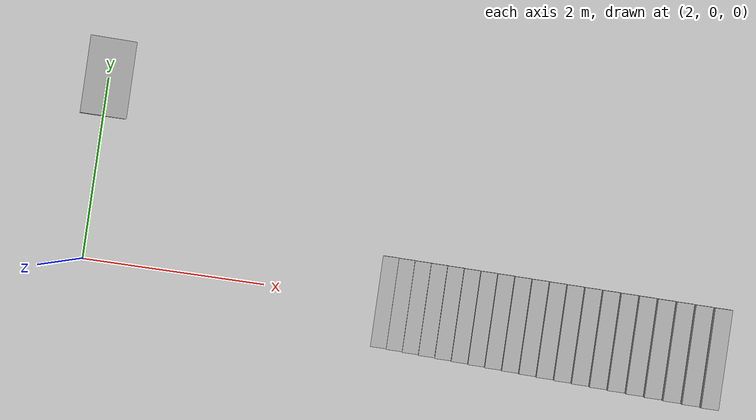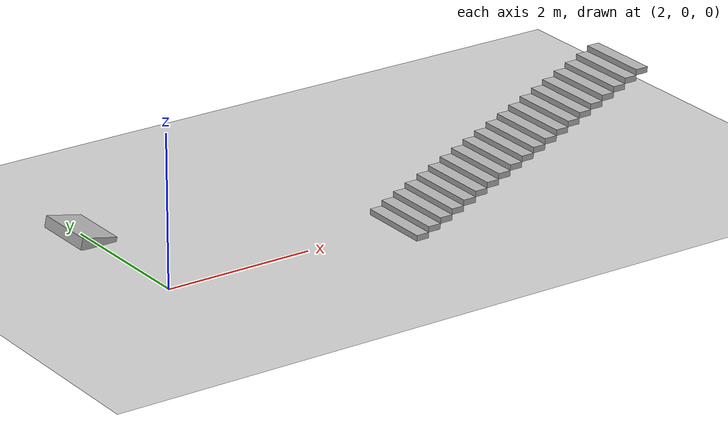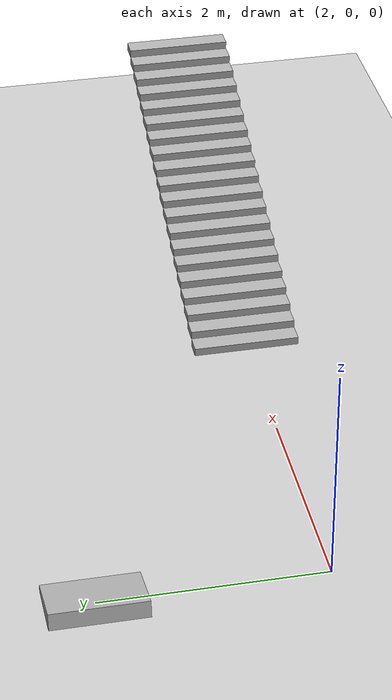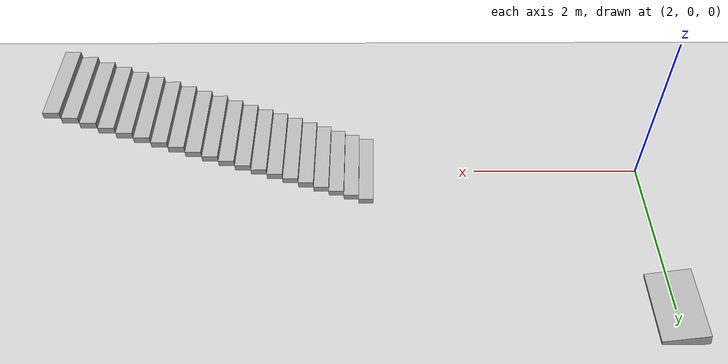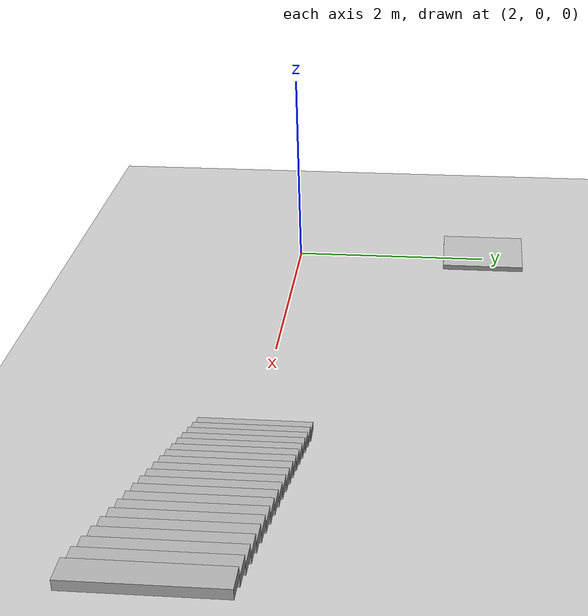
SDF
<sdf version="1.10">
 <world name="default">
  <physics name="4ms" type="ignored">
   <max_step_size>0.0040000000000000001</max_step_size>
   <real_time_factor>1</real_time_factor>
   <real_time_update_rate>1000</real_time_update_rate>
  </physics>
  <plugin name="gz::sim::systems::Physics" filename="gz-sim-physics-system"/>
  <plugin name="gz::sim::systems::UserCommands" filename="gz-sim-user-commands-system"/>
  <plugin name="gz::sim::systems::SceneBroadcaster" filename="gz-sim-scene-broadcaster-system"/>
  <plugin filename="gz-sim-imu-system" name="gz::sim::systems::Imu"/>
  <scene>
   <ambient>1 1 1 1</ambient>
   <background>0.800000012 0.800000012 0.800000012 1</background>
   <shadows>true</shadows>
  </scene>
  <gravity>0 0 -9.8000000000000007</gravity>
  <magnetic_field>6.0000000000000002e-06 2.3e-05 -4.1999999999999998e-05</magnetic_field>
  <atmosphere type="adiabatic"/>
  <model name="ground_plane">
   <static>true</static>
   <link name="link">
    <collision name="collision">
     <geometry><plane><normal>0 0 1</normal><size>100 100</size></plane></geometry>
    </collision>
    <visual name="visual">
     <geometry><plane><normal>0 0 1</normal><size>100 100</size></plane></geometry>
     <material>
      <ambient>0.800000012 0.800000012 0.800000012 1</ambient>
      <diffuse>0.800000012 0.800000012 0.800000012 1</diffuse>
      <specular>0.800000012 0.800000012 0.800000012 1</specular>
     </material>
    </visual>
    <inertial>
     <mass>1</mass>
     <inertia><ixx>1</ixx><ixy>0</ixy><ixz>0</ixz><iyy>1</iyy><iyz>0</iyz><izz>1</izz></inertia>
    </inertial>
   </link>
  </model>
  <model name="stairs_very_simple">
   <pose>7 0 0 0 0 1.5708000000000006</pose>
   <link name="Stairs_3">
    <visual name="Stairs_3_Visual_0">
     <pose>0 1.6625000000000001 0.037499999999999999 0 0 0</pose>
     <geometry><box><size>1 0.17499999999999999 0.074999999999999997</size></box></geometry>
     <material><ambient>.6 .6 .6  1.0</ambient><diffuse>.7 .7 .7  1.0</diffuse></material>
     <meta><layer>0</layer></meta>
    </visual>
    <collision name="Stairs_3_Collision_0">
     <geometry><box><size>1 0.17499999999999999 0.074999999999999997</size></box></geometry>
     <pose>0 1.6625000000000001 0.037499999999999999 0 0 0</pose>
    </collision>
    <visual name="Stairs_3_Visual_1">
     <pose>0 1.4875 0.1125 0 0 0</pose>
     <geometry><box><size>1 0.17499999999999999 0.074999999999999997</size></box></geometry>
     <material><ambient>.6 .6 .6  1.0</ambient><diffuse>.7 .7 .7  1.0</diffuse></material>
     <meta><layer>0</layer></meta>
    </visual>
    <collision name="Stairs_3_Collision_1">
     <geometry><box><size>1 0.17499999999999999 0.074999999999999997</size></box></geometry>
     <pose>0 1.4875 0.1125 0 0 0</pose>
    </collision>
    <visual name="Stairs_3_Visual_2">
     <pose>0 1.3125 0.1875 0 0 0</pose>
     <geometry><box><size>1 0.17499999999999999 0.074999999999999997</size></box></geometry>
     <material><ambient>.6 .6 .6  1.0</ambient><diffuse>.7 .7 .7  1.0</diffuse></material>
     <meta><layer>0</layer></meta>
    </visual>
    <collision name="Stairs_3_Collision_2">
     <geometry><box><size>1 0.17499999999999999 0.074999999999999997</size></box></geometry>
     <pose>0 1.3125 0.1875 0 0 0</pose>
    </collision>
    <visual name="Stairs_3_Visual_3">
     <pose>0 1.1375 0.26250000000000001 0 0 0</pose>
     <geometry><box><size>1 0.17499999999999999 0.074999999999999997</size></box></geometry>
     <material><ambient>.6 .6 .6  1.0</ambient><diffuse>.7 .7 .7  1.0</diffuse></material>
     <meta><layer>0</layer></meta>
    </visual>
    <collision name="Stairs_3_Collision_3">
     <geometry><box><size>1 0.17499999999999999 0.074999999999999997</size></box></geometry>
     <pose>0 1.1375 0.26250000000000001 0 0 0</pose>
    </collision>
    <visual name="Stairs_3_Visual_4">
     <pose>0 0.96250000000000002 0.33750000000000002 0 0 0</pose>
     <geometry><box><size>1 0.17499999999999999 0.074999999999999997</size></box></geometry>
     <material><ambient>.6 .6 .6  1.0</ambient><diffuse>.7 .7 .7  1.0</diffuse></material>
     <meta><layer>0</layer></meta>
    </visual>
    <collision name="Stairs_3_Collision_4">
     <geometry><box><size>1 0.17499999999999999 0.074999999999999997</size></box></geometry>
     <pose>0 0.96250000000000002 0.33750000000000002 0 0 0</pose>
    </collision>
    <visual name="Stairs_3_Visual_5">
     <pose>0 0.78749999999999998 0.41249999999999998 0 0 0</pose>
     <geometry><box><size>1 0.17499999999999999 0.074999999999999997</size></box></geometry>
     <material><ambient>.6 .6 .6  1.0</ambient><diffuse>.7 .7 .7  1.0</diffuse></material>
     <meta><layer>0</layer></meta>
    </visual>
    <collision name="Stairs_3_Collision_5">
     <geometry><box><size>1 0.17499999999999999 0.074999999999999997</size></box></geometry>
     <pose>0 0.78749999999999998 0.41249999999999998 0 0 0</pose>
    </collision>
    <visual name="Stairs_3_Visual_6">
     <pose>0 0.61250000000000004 0.48749999999999999 0 0 0</pose>
     <geometry><box><size>1 0.17499999999999999 0.074999999999999997</size></box></geometry>
     <material><ambient>.6 .6 .6  1.0</ambient><diffuse>.7 .7 .7  1.0</diffuse></material>
     <meta><layer>0</layer></meta>
    </visual>
    <collision name="Stairs_3_Collision_6">
     <geometry><box><size>1 0.17499999999999999 0.074999999999999997</size></box></geometry>
     <pose>0 0.61250000000000004 0.48749999999999999 0 0 0</pose>
    </collision>
    <visual name="Stairs_3_Visual_7">
     <pose>0 0.4375 0.5625 0 0 0</pose>
     <geometry><box><size>1 0.17499999999999999 0.074999999999999997</size></box></geometry>
     <material><ambient>.6 .6 .6  1.0</ambient><diffuse>.7 .7 .7  1.0</diffuse></material>
     <meta><layer>0</layer></meta>
    </visual>
    <collision name="Stairs_3_Collision_7">
     <geometry><box><size>1 0.17499999999999999 0.074999999999999997</size></box></geometry>
     <pose>0 0.4375 0.5625 0 0 0</pose>
    </collision>
    <visual name="Stairs_3_Visual_8">
     <pose>0 0.26250000000000001 0.63749999999999996 0 0 0</pose>
     <geometry><box><size>1 0.17499999999999999 0.074999999999999997</size></box></geometry>
     <material><ambient>.6 .6 .6  1.0</ambient><diffuse>.7 .7 .7  1.0</diffuse></material>
     <meta><layer>0</layer></meta>
    </visual>
    <collision name="Stairs_3_Collision_8">
     <geometry><box><size>1 0.17499999999999999 0.074999999999999997</size></box></geometry>
     <pose>0 0.26250000000000001 0.63749999999999996 0 0 0</pose>
    </collision>
    <visual name="Stairs_3_Visual_9">
     <pose>0 0.087499999999999994 0.71250000000000002 0 0 0</pose>
     <geometry><box><size>1 0.17499999999999999 0.074999999999999997</size></box></geometry>
     <material><ambient>.6 .6 .6  1.0</ambient><diffuse>.7 .7 .7  1.0</diffuse></material>
     <meta><layer>0</layer></meta>
    </visual>
    <collision name="Stairs_3_Collision_9">
     <geometry><box><size>1 0.17499999999999999 0.074999999999999997</size></box></geometry>
     <pose>0 0.087499999999999994 0.71250000000000002 0 0 0</pose>
    </collision>
    <visual name="Stairs_3_Visual_10">
     <pose>0 -0.087499999999999994 0.78749999999999998 0 0 0</pose>
     <geometry><box><size>1 0.17499999999999999 0.074999999999999997</size></box></geometry>
     <material><ambient>.6 .6 .6  1.0</ambient><diffuse>.7 .7 .7  1.0</diffuse></material>
     <meta><layer>0</layer></meta>
    </visual>
    <collision name="Stairs_3_Collision_10">
     <geometry><box><size>1 0.17499999999999999 0.074999999999999997</size></box></geometry>
     <pose>0 -0.087499999999999994 0.78749999999999998 0 0 0</pose>
    </collision>
    <visual name="Stairs_3_Visual_11">
     <pose>0 -0.26250000000000001 0.86250000000000004 0 0 0</pose>
     <geometry><box><size>1 0.17499999999999999 0.074999999999999997</size></box></geometry>
     <material><ambient>.6 .6 .6  1.0</ambient><diffuse>.7 .7 .7  1.0</diffuse></material>
     <meta><layer>0</layer></meta>
    </visual>
    <collision name="Stairs_3_Collision_11">
     <geometry><box><size>1 0.17499999999999999 0.074999999999999997</size></box></geometry>
     <pose>0 -0.26250000000000001 0.86250000000000004 0 0 0</pose>
    </collision>
    <visual name="Stairs_3_Visual_12">
     <pose>0 -0.4375 0.9375 0 0 0</pose>
     <geometry><box><size>1 0.17499999999999999 0.074999999999999997</size></box></geometry>
     <material><ambient>.6 .6 .6  1.0</ambient><diffuse>.7 .7 .7  1.0</diffuse></material>
     <meta><layer>0</layer></meta>
    </visual>
    <collision name="Stairs_3_Collision_12">
     <geometry><box><size>1 0.17499999999999999 0.074999999999999997</size></box></geometry>
     <pose>0 -0.4375 0.9375 0 0 0</pose>
    </collision>
    <visual name="Stairs_3_Visual_13">
     <pose>0 -0.61250000000000004 1.0125 0 0 0</pose>
     <geometry><box><size>1 0.17499999999999999 0.074999999999999997</size></box></geometry>
     <material><ambient>.6 .6 .6  1.0</ambient><diffuse>.7 .7 .7  1.0</diffuse></material>
     <meta><layer>0</layer></meta>
    </visual>
    <collision name="Stairs_3_Collision_13">
     <geometry><box><size>1 0.17499999999999999 0.074999999999999997</size></box></geometry>
     <pose>0 -0.61250000000000004 1.0125 0 0 0</pose>
    </collision>
    <visual name="Stairs_3_Visual_14">
     <pose>0 -0.78749999999999998 1.0874999999999999 0 0 0</pose>
     <geometry><box><size>1 0.17499999999999999 0.074999999999999997</size></box></geometry>
     <material><ambient>.6 .6 .6  1.0</ambient><diffuse>.7 .7 .7  1.0</diffuse></material>
     <meta><layer>0</layer></meta>
    </visual>
    <collision name="Stairs_3_Collision_14">
     <geometry><box><size>1 0.17499999999999999 0.074999999999999997</size></box></geometry>
     <pose>0 -0.78749999999999998 1.0874999999999999 0 0 0</pose>
    </collision>
    <visual name="Stairs_3_Visual_15">
     <pose>0 -0.96250000000000002 1.1625000000000001 0 0 0</pose>
     <geometry><box><size>1 0.17499999999999999 0.074999999999999997</size></box></geometry>
     <material><ambient>.6 .6 .6  1.0</ambient><diffuse>.7 .7 .7  1.0</diffuse></material>
     <meta><layer>0</layer></meta>
    </visual>
    <collision name="Stairs_3_Collision_15">
     <geometry><box><size>1 0.17499999999999999 0.074999999999999997</size></box></geometry>
     <pose>0 -0.96250000000000002 1.1625000000000001 0 0 0</pose>
    </collision>
    <visual name="Stairs_3_Visual_16">
     <pose>0 -1.1375 1.2375 0 0 0</pose>
     <geometry><box><size>1 0.17499999999999999 0.074999999999999997</size></box></geometry>
     <material><ambient>.6 .6 .6  1.0</ambient><diffuse>.7 .7 .7  1.0</diffuse></material>
     <meta><layer>0</layer></meta>
    </visual>
    <collision name="Stairs_3_Collision_16">
     <geometry><box><size>1 0.17499999999999999 0.074999999999999997</size></box></geometry>
     <pose>0 -1.1375 1.2375 0 0 0</pose>
    </collision>
    <visual name="Stairs_3_Visual_17">
     <pose>0 -1.3125 1.3125 0 0 0</pose>
     <geometry><box><size>1 0.17499999999999999 0.074999999999999997</size></box></geometry>
     <material><ambient>.6 .6 .6  1.0</ambient><diffuse>.7 .7 .7  1.0</diffuse></material>
     <meta><layer>0</layer></meta>
    </visual>
    <collision name="Stairs_3_Collision_17">
     <geometry><box><size>1 0.17499999999999999 0.074999999999999997</size></box></geometry>
     <pose>0 -1.3125 1.3125 0 0 0</pose>
    </collision>
    <visual name="Stairs_3_Visual_18">
     <pose>0 -1.4875 1.3875 0 0 0</pose>
     <geometry><box><size>1 0.17499999999999999 0.074999999999999997</size></box></geometry>
     <material><ambient>.6 .6 .6  1.0</ambient><diffuse>.7 .7 .7  1.0</diffuse></material>
     <meta><layer>0</layer></meta>
    </visual>
    <collision name="Stairs_3_Collision_18">
     <geometry><box><size>1 0.17499999999999999 0.074999999999999997</size></box></geometry>
     <pose>0 -1.4875 1.3875 0 0 0</pose>
    </collision>
    <visual name="Stairs_3_Visual_19">
     <pose>0 -1.6625000000000001 1.4624999999999999 0 0 0</pose>
     <geometry><box><size>1 0.17499999999999999 0.074999999999999997</size></box></geometry>
     <material><ambient>.6 .6 .6  1.0</ambient><diffuse>.7 .7 .7  1.0</diffuse></material>
     <meta><layer>0</layer></meta>
    </visual>
    <collision name="Stairs_3_Collision_19">
     <geometry><box><size>1 0.17499999999999999 0.074999999999999997</size></box></geometry>
     <pose>0 -1.6625000000000001 1.4624999999999999 0 0 0</pose>
    </collision>
    <inertial>
     <mass>1</mass>
     <inertia><ixx>1</ixx><ixy>0</ixy><ixz>0</ixz><iyy>1</iyy><iyz>0</iyz><izz>1</izz></inertia>
    </inertial>
   </link>
   <static>true</static>
  </model>
  <model name="box_obstacle">
   <static>true</static>
   <pose>2 2 0.028000000000000001 1.7821 5.5511151231257827e-17 1.5708000000000002</pose>
   <link name="box">
    <collision name="box_collision">
     <geometry><box><size>0.84999999999999998 0.14999999999999999 0.5</size></box></geometry>
     <surface><friction><ode><mu>1</mu></ode></friction></surface>
    </collision>
    <visual name="box_visual">
     <geometry><box><size>0.84999999999999998 0.14999999999999999 0.5</size></box></geometry>
     <material><ambient>.6 .6 .6  1.0</ambient><diffuse>.7 .7 .7  1.0</diffuse></material>
    </visual>
    <inertial>
     <mass>1</mass>
     <inertia><ixx>1</ixx><ixy>0</ixy><ixz>0</ixz><iyy>1</iyy><iyz>0</iyz><izz>1</izz></inertia>
    </inertial>
   </link>
  </model>
  <light name="sun" type="directional">
   <pose>0 0 10 0 0 0</pose>
   <intensity>1</intensity>
   <direction>-0.5 0.10000000000000001 -0.90000000000000002</direction>
   <diffuse>0.800000012 0.800000012 0.800000012 1</diffuse>
   <specular>0.800000012 0.800000012 0.800000012 1</specular>
   <attenuation>
    <range>1000</range>
    <linear>0.0099999997764825821</linear>
    <constant>0.89999997615814209</constant>
    <quadratic>0.0010000000474974513</quadratic>
   </attenuation>
   <spot><inner_angle>0</inner_angle><outer_angle>0</outer_angle><falloff>0</falloff></spot>
  </light>
 </world>
</sdf>
